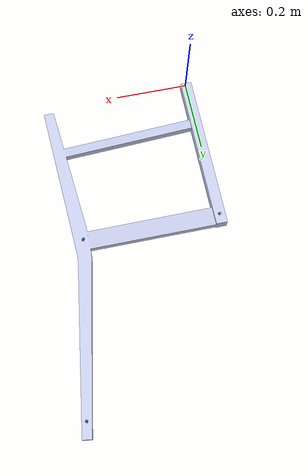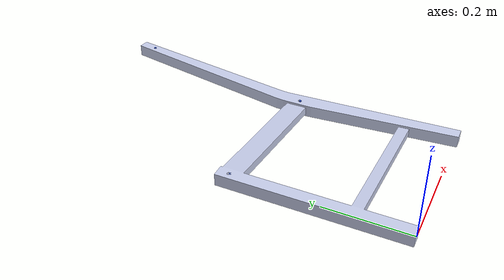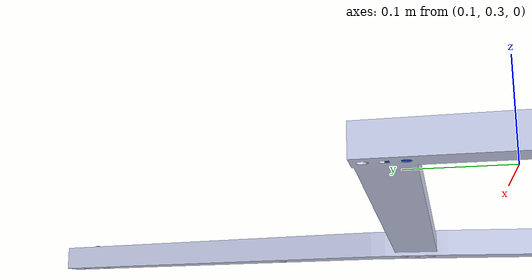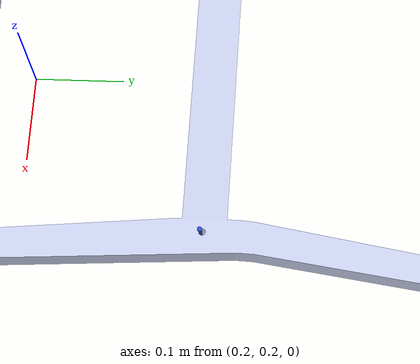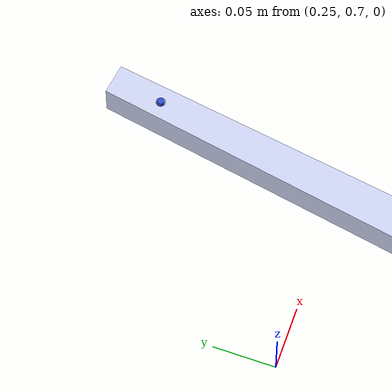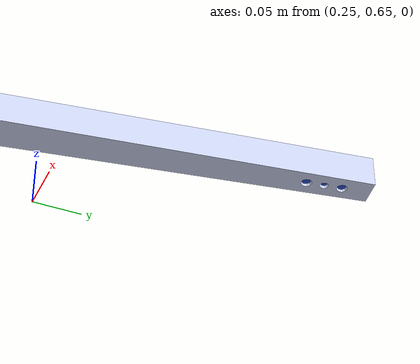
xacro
<?xml version="1.0" encoding="utf-8"?>
<robot name="PART6.SLDPRT" xmlns:xacro="http://www.ros.org/wiki/xacro">

	<link name="PART6.SLDPRT">
		<inertial>
			<origin xyz="0.25066 0.35103 -0.023978" rpy="0 0 0"></origin>
			<mass value="1.8121"></mass>
			<inertia ixx="0.085485" ixy="0.028258" ixz="-0.0047463" iyy="0.051765" iyz="-0.0023711" izz="0.13613"></inertia>
		</inertial>
		<visual>
			<origin xyz="0 0 0" rpy="0 0 0"></origin>
			<geometry>
				<mesh filename="package://object_description/urdfs_from_hj/PART6.SLDPRT/meshes/PART6.SLDPRT.STL"></mesh>
			</geometry>
			<material name="">
				<color rgba="0.79216 0.81961 0.93333 1"></color>
			</material>
		</visual>
		<collision>
			<origin xyz="0 0 0" rpy="0 0 0"></origin>
			<geometry>
				<mesh filename="package://object_description/urdfs_from_hj/PART6.SLDPRT/meshes/PART6.SLDPRT.STL"></mesh>
			</geometry>
		</collision>
	</link>
	<link name="PART6 hole blocked 1">
		<visual>
			<origin xyz="0 0 0" rpy="0 0 0"></origin>
			<geometry>
				<cylinder length="0.01" radius="0.004"></cylinder>
			</geometry>
		</visual>
	</link>
	<link name="PART6 hole opened 2">
		<visual>
			<origin xyz="0 0 0" rpy="0 0 0"></origin>
			<geometry>
				<cylinder length="0.03" radius="0.00275"></cylinder>
			</geometry>
		</visual>
	</link>
	<link name="PART6 hole blocked 3">
		<visual>
			<origin xyz="0 0 0" rpy="0 0 0"></origin>
			<geometry>
				<cylinder length="0.01" radius="0.004"></cylinder>
			</geometry>
		</visual>
	</link>
	<link name="PART6 hole blocked 4">
		<visual>
			<origin xyz="0 0 0" rpy="0 0 0"></origin>
			<geometry>
				<cylinder length="0.01" radius="0.004"></cylinder>
			</geometry>
		</visual>
	</link>
	<link name="PART6 hole opened 5">
		<visual>
			<origin xyz="0 0 0" rpy="0 0 0"></origin>
			<geometry>
				<cylinder length="0.03" radius="0.00275"></cylinder>
			</geometry>
		</visual>
	</link>
	<link name="PART6 hole blocked 6">
		<visual>
			<origin xyz="0 0 0" rpy="0 0 0"></origin>
			<geometry>
				<cylinder length="0.01" radius="0.004"></cylinder>
			</geometry>
		</visual>
	</link>
	<link name="PART6 hole blocked 7">
		<visual>
			<origin xyz="0 0 0" rpy="0 0 0"></origin>
			<geometry>
				<cylinder length="0.015" radius="0.004"></cylinder>
			</geometry>
		</visual>
	</link>
	<link name="PART6 hole blocked 8">
		<visual>
			<origin xyz="0 0 0" rpy="0 0 0"></origin>
			<geometry>
				<cylinder length="0.015" radius="0.004"></cylinder>
			</geometry>
		</visual>
	</link>
	<link name="PART6 hole opened 9">
		<visual>
			<origin xyz="0 0 0" rpy="0 0 0"></origin>
			<geometry>
				<cylinder length="0.03" radius="0.00275"></cylinder>
			</geometry>
		</visual>
	</link>
	<link name="PART6 hole blocked 10">
		<visual>
			<origin xyz="0 0 0" rpy="0 0 0"></origin>
			<geometry>
				<cylinder length="0.015" radius="0.004"></cylinder>
			</geometry>
		</visual>
	</link>
	<joint name="PART6 hole blocked 1 joint" type="fixed">
		<origin xyz="0.0 0.392 -0.01" rpy="0.0 0.0 0.0"></origin>
		<parent link="PART6.SLDPRT"></parent>
		<child link="PART6 hole blocked 1"></child>
	</joint>
	<joint name="PART6 hole opened 2 joint" type="fixed">
		<origin xyz="0.001329 0.4045 0.0" rpy="0.0 3.14159265359 0.0"></origin>
		<parent link="PART6.SLDPRT"></parent>
		<child link="PART6 hole opened 2"></child>
	</joint>
	<joint name="PART6 hole blocked 3 joint" type="fixed">
		<origin xyz="0.0 0.40422 -0.01" rpy="0.0 0.0 0.0"></origin>
		<parent link="PART6.SLDPRT"></parent>
		<child link="PART6 hole blocked 3"></child>
	</joint>
	<joint name="PART6 hole blocked 4 joint" type="fixed">
		<origin xyz="0.36666 0.37903 -0.045" rpy="0.0 0.0 0.0"></origin>
		<parent link="PART6.SLDPRT"></parent>
		<child link="PART6 hole blocked 4"></child>
	</joint>
	<joint name="PART6 hole opened 5 joint" type="fixed">
		<origin xyz="0.36727 0.39261 -0.035" rpy="0.0 3.14159265359 0.0"></origin>
		<parent link="PART6.SLDPRT"></parent>
		<child link="PART6 hole opened 5"></child>
	</joint>
	<joint name="PART6 hole blocked 6 joint" type="fixed">
		<origin xyz="0.36666 0.40831 -0.045" rpy="0.0 0.0 0.0"></origin>
		<parent link="PART6.SLDPRT"></parent>
		<child link="PART6 hole blocked 6"></child>
	</joint>
	<joint name="PART6 hole blocked 7 joint" type="fixed">
		<origin xyz="0.39163 0.56715 -0.0425" rpy="0.0 0.0 0.0"></origin>
		<parent link="PART6.SLDPRT"></parent>
		<child link="PART6 hole blocked 7"></child>
	</joint>
	<joint name="PART6 hole blocked 8 joint" type="fixed">
		<origin xyz="0.43931 0.84512 -0.0425" rpy="0.0 0.0 0.0"></origin>
		<parent link="PART6.SLDPRT"></parent>
		<child link="PART6 hole blocked 8"></child>
	</joint>
	<joint name="PART6 hole opened 9 joint" type="fixed">
		<origin xyz="0.44198 0.8614 -0.035" rpy="0.0 3.14159265359 0.0"></origin>
		<parent link="PART6.SLDPRT"></parent>
		<child link="PART6 hole opened 9"></child>
	</joint>
	<joint name="PART6 hole blocked 10 joint" type="fixed">
		<origin xyz="0.44464 0.87769 -0.0425" rpy="0.0 0.0 0.0"></origin>
		<parent link="PART6.SLDPRT"></parent>
		<child link="PART6 hole blocked 10"></child>
	</joint>
	<gazebo reference="PART6 hole blocked 1">
		<material>Gazebo/BlueTransparent</material>
	</gazebo>
	<gazebo reference="PART6 hole opened 2">
		<material>Gazebo/BlueTransparent</material>
	</gazebo>
	<gazebo reference="PART6 hole blocked 3">
		<material>Gazebo/BlueTransparent</material>
	</gazebo>
	<gazebo reference="PART6 hole blocked 4">
		<material>Gazebo/BlueTransparent</material>
	</gazebo>
	<gazebo reference="PART6 hole opened 5">
		<material>Gazebo/BlueTransparent</material>
	</gazebo>
	<gazebo reference="PART6 hole blocked 6">
		<material>Gazebo/BlueTransparent</material>
	</gazebo>
	<gazebo reference="PART6 hole blocked 7">
		<material>Gazebo/BlueTransparent</material>
	</gazebo>
	<gazebo reference="PART6 hole blocked 8">
		<material>Gazebo/BlueTransparent</material>
	</gazebo>
	<gazebo reference="PART6 hole opened 9">
		<material>Gazebo/BlueTransparent</material>
	</gazebo>
	<gazebo reference="PART6 hole blocked 10">
		<material>Gazebo/BlueTransparent</material>
	</gazebo>
</robot>
